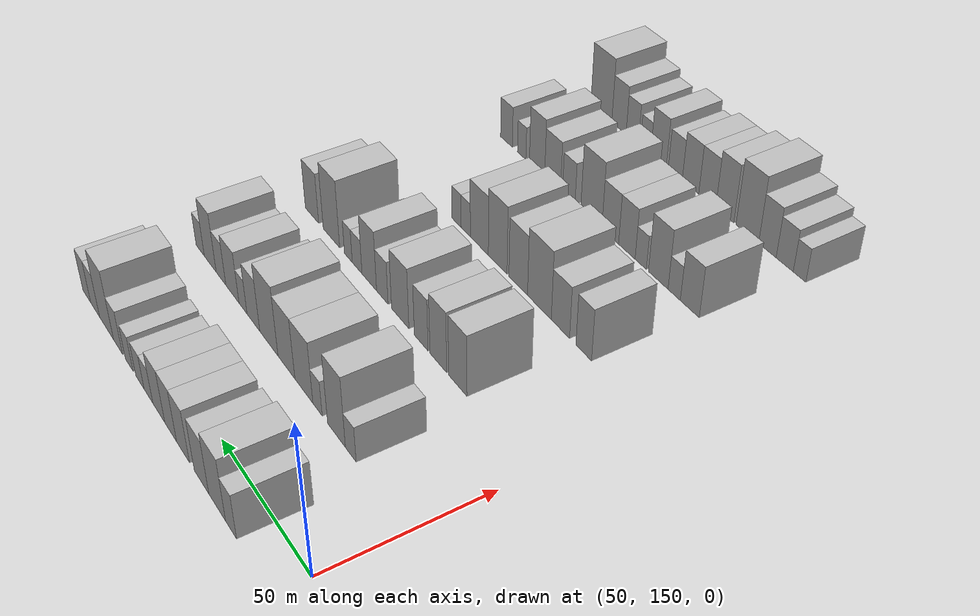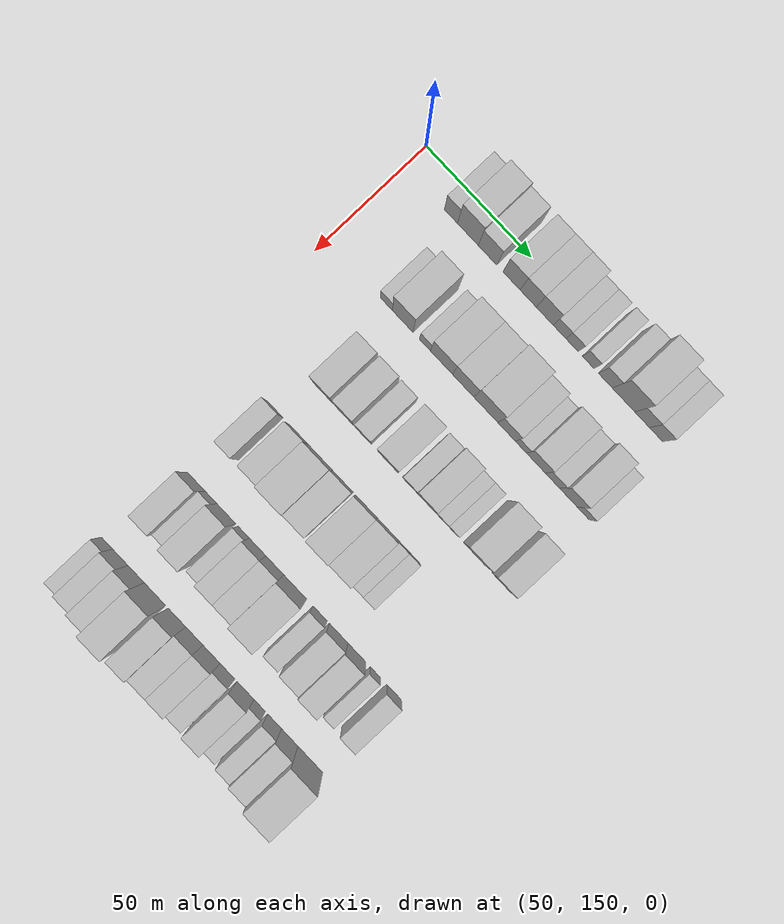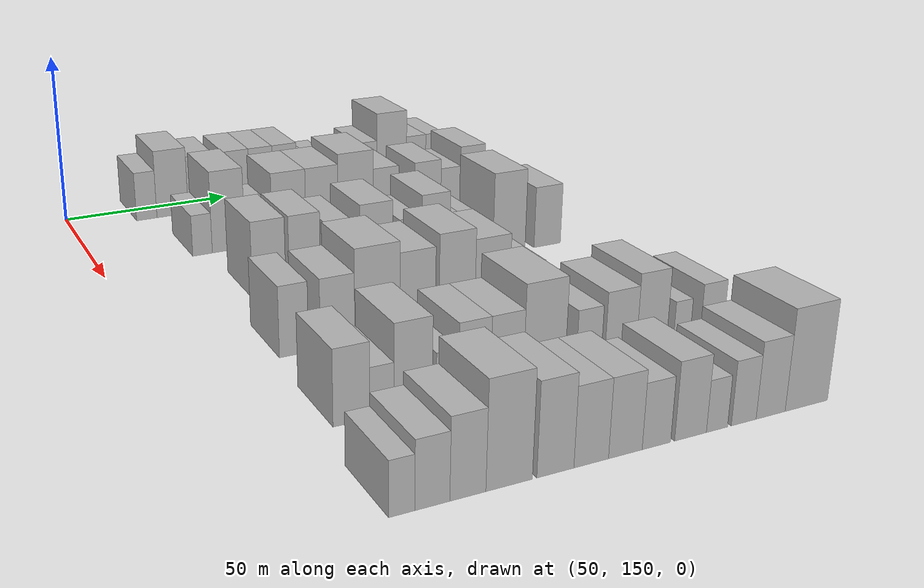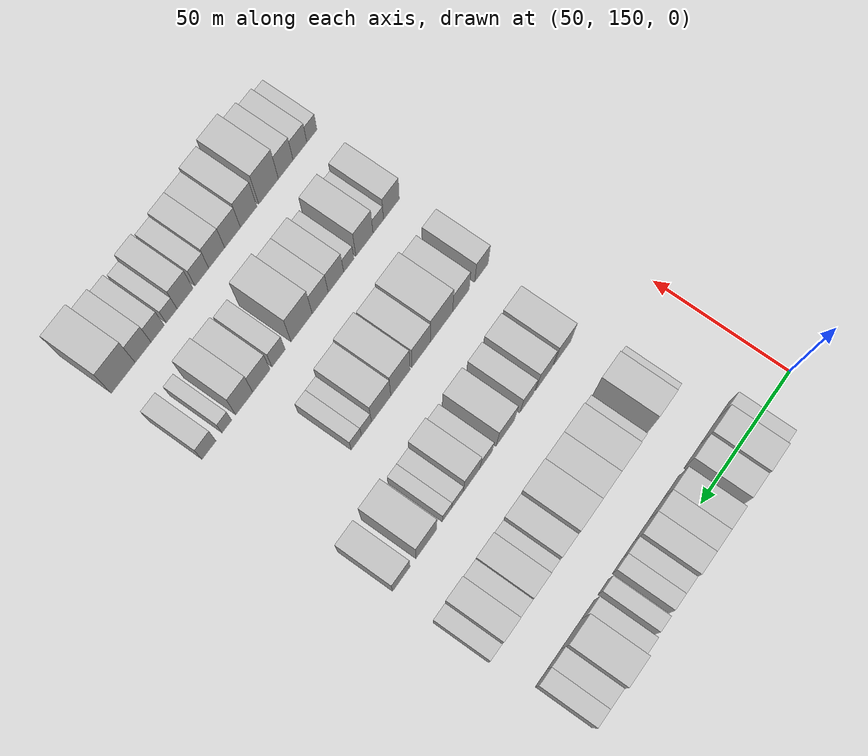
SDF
<sdf version="1.6">
 <world name="default">
  <model name="building_72">
   <static>1</static>
   <pose>50.0000 172.2063 0 0.000000 0.000000 0.000000</pose>
   <link name="link">
    <pose>0 0 7.50 0 0 0</pose>
    <collision name="collision"><geometry><box><size>20.0000 6.2853 15.0000</size></box></geometry></collision>
    <visual name="visual">
     <cast_shadows>0</cast_shadows>
     <geometry><box><size>20.0000 6.2853 15.0000</size></box></geometry>
     <material>
      <script>
       <uri>model://HANNAS_wall/materials/scripts</uri>
       <uri>model://HANNAS_wall/materials/textures</uri>
       <name>vrc/HANNAS_wall</name>
      </script>
     </material>
    </visual>
   </link>
  </model>
  <model name="building_73">
   <static>1</static>
   <pose>50.0000 180.2846 0 0.000000 0.000000 0.000000</pose>
   <link name="link">
    <pose>0 0 10.50 0 0 0</pose>
    <collision name="collision"><geometry><box><size>20.0000 9.8712 21.0000</size></box></geometry></collision>
    <visual name="visual">
     <cast_shadows>0</cast_shadows>
     <geometry><box><size>20.0000 9.8712 21.0000</size></box></geometry>
     <material>
      <script>
       <uri>model://HANNAS_wall/materials/scripts</uri>
       <uri>model://HANNAS_wall/materials/textures</uri>
       <name>vrc/HANNAS_wall</name>
      </script>
     </material>
    </visual>
   </link>
  </model>
  <model name="building_74">
   <static>1</static>
   <pose>50.0000 189.6203 0 0.000000 0.000000 0.000000</pose>
   <link name="link">
    <pose>0 0 9.00 0 0 0</pose>
    <collision name="collision"><geometry><box><size>20.0000 8.8002 18.0000</size></box></geometry></collision>
    <visual name="visual">
     <cast_shadows>0</cast_shadows>
     <geometry><box><size>20.0000 8.8002 18.0000</size></box></geometry>
     <material>
      <script>
       <uri>model://HANNAS_wall/materials/scripts</uri>
       <uri>model://HANNAS_wall/materials/textures</uri>
       <name>vrc/HANNAS_wall</name>
      </script>
     </material>
    </visual>
   </link>
  </model>
  <model name="building_75">
   <static>1</static>
   <pose>50.0000 201.1195 0 0.000000 0.000000 0.000000</pose>
   <link name="link">
    <pose>0 0 9.00 0 0 0</pose>
    <collision name="collision"><geometry><box><size>20.0000 8.1983 18.0000</size></box></geometry></collision>
    <visual name="visual">
     <cast_shadows>0</cast_shadows>
     <geometry><box><size>20.0000 8.1983 18.0000</size></box></geometry>
     <material>
      <script>
       <uri>model://HANNAS_wall/materials/scripts</uri>
       <uri>model://HANNAS_wall/materials/textures</uri>
       <name>vrc/HANNAS_wall</name>
      </script>
     </material>
    </visual>
   </link>
  </model>
  <model name="building_76">
   <static>1</static>
   <pose>50.0000 209.0803 0 0.000000 0.000000 0.000000</pose>
   <link name="link">
    <pose>0 0 9.00 0 0 0</pose>
    <collision name="collision"><geometry><box><size>20.0000 7.7233 18.0000</size></box></geometry></collision>
    <visual name="visual">
     <cast_shadows>0</cast_shadows>
     <geometry><box><size>20.0000 7.7233 18.0000</size></box></geometry>
     <material>
      <script>
       <uri>model://HANNAS_wall/materials/scripts</uri>
       <uri>model://HANNAS_wall/materials/textures</uri>
       <name>vrc/HANNAS_wall</name>
      </script>
     </material>
    </visual>
   </link>
  </model>
  <model name="building_77">
   <static>1</static>
   <pose>50.0000 216.9637 0 0.000000 0.000000 0.000000</pose>
   <link name="link">
    <pose>0 0 9.00 0 0 0</pose>
    <collision name="collision"><geometry><box><size>20.0000 8.0435 18.0000</size></box></geometry></collision>
    <visual name="visual">
     <cast_shadows>0</cast_shadows>
     <geometry><box><size>20.0000 8.0435 18.0000</size></box></geometry>
     <material>
      <script>
       <uri>model://HANNAS_wall/materials/scripts</uri>
       <uri>model://HANNAS_wall/materials/textures</uri>
       <name>vrc/HANNAS_wall</name>
      </script>
     </material>
    </visual>
   </link>
  </model>
  <model name="building_78">
   <static>1</static>
   <pose>50.0000 223.9829 0 0.000000 0.000000 0.000000</pose>
   <link name="link">
    <pose>0 0 6.00 0 0 0</pose>
    <collision name="collision"><geometry><box><size>20.0000 5.9948 12.0000</size></box></geometry></collision>
    <visual name="visual">
     <cast_shadows>0</cast_shadows>
     <geometry><box><size>20.0000 5.9948 12.0000</size></box></geometry>
     <material>
      <script>
       <uri>model://HANNAS_wall/materials/scripts</uri>
       <uri>model://HANNAS_wall/materials/textures</uri>
       <name>vrc/HANNAS_wall</name>
      </script>
     </material>
    </visual>
   </link>
  </model>
  <model name="building_79">
   <static>1</static>
   <pose>50.0000 229.9279 0 0.000000 0.000000 0.000000</pose>
   <link name="link">
    <pose>0 0 6.00 0 0 0</pose>
    <collision name="collision"><geometry><box><size>20.0000 5.8952 12.0000</size></box></geometry></collision>
    <visual name="visual">
     <cast_shadows>0</cast_shadows>
     <geometry><box><size>20.0000 5.8952 12.0000</size></box></geometry>
     <material>
      <script>
       <uri>model://HANNAS_wall/materials/scripts</uri>
       <uri>model://HANNAS_wall/materials/textures</uri>
       <name>vrc/HANNAS_wall</name>
      </script>
     </material>
    </visual>
   </link>
  </model>
  <model name="building_80">
   <static>1</static>
   <pose>50.0000 237.6682 0 0.000000 0.000000 0.000000</pose>
   <link name="link">
    <pose>0 0 6.00 0 0 0</pose>
    <collision name="collision"><geometry><box><size>20.0000 5.5854 12.0000</size></box></geometry></collision>
    <visual name="visual">
     <cast_shadows>0</cast_shadows>
     <geometry><box><size>20.0000 5.5854 12.0000</size></box></geometry>
     <material>
      <script>
       <uri>model://HANNAS_wall/materials/scripts</uri>
       <uri>model://HANNAS_wall/materials/textures</uri>
       <name>vrc/HANNAS_wall</name>
      </script>
     </material>
    </visual>
   </link>
  </model>
  <model name="building_81">
   <static>1</static>
   <pose>50.0000 245.8114 0 0.000000 0.000000 0.000000</pose>
   <link name="link">
    <pose>0 0 7.50 0 0 0</pose>
    <collision name="collision"><geometry><box><size>20.0000 6.7012 15.0000</size></box></geometry></collision>
    <visual name="visual">
     <cast_shadows>0</cast_shadows>
     <geometry><box><size>20.0000 6.7012 15.0000</size></box></geometry>
     <material>
      <script>
       <uri>model://HANNAS_wall/materials/scripts</uri>
       <uri>model://HANNAS_wall/materials/textures</uri>
       <name>vrc/HANNAS_wall</name>
      </script>
     </material>
    </visual>
   </link>
  </model>
  <model name="building_82">
   <static>1</static>
   <pose>50.0000 254.4853 0 0.000000 0.000000 0.000000</pose>
   <link name="link">
    <pose>0 0 12.00 0 0 0</pose>
    <collision name="collision"><geometry><box><size>20.0000 10.6465 24.0000</size></box></geometry></collision>
    <visual name="visual">
     <cast_shadows>0</cast_shadows>
     <geometry><box><size>20.0000 10.6465 24.0000</size></box></geometry>
     <material>
      <script>
       <uri>model://HANNAS_wall/materials/scripts</uri>
       <uri>model://HANNAS_wall/materials/textures</uri>
       <name>vrc/HANNAS_wall</name>
      </script>
     </material>
    </visual>
   </link>
  </model>
  <model name="building_83">
   <static>1</static>
   <pose>50.0000 263.3288 0 0.000000 0.000000 0.000000</pose>
   <link name="link">
    <pose>0 0 7.50 0 0 0</pose>
    <collision name="collision"><geometry><box><size>20.0000 7.0406 15.0000</size></box></geometry></collision>
    <visual name="visual">
     <cast_shadows>0</cast_shadows>
     <geometry><box><size>20.0000 7.0406 15.0000</size></box></geometry>
     <material>
      <script>
       <uri>model://HANNAS_wall/materials/scripts</uri>
       <uri>model://HANNAS_wall/materials/textures</uri>
       <name>vrc/HANNAS_wall</name>
      </script>
     </material>
    </visual>
   </link>
  </model>
  <model name="building_84">
   <static>1</static>
   <pose>50.0000 270.0335 0 0.000000 0.000000 0.000000</pose>
   <link name="link">
    <pose>0 0 7.50 0 0 0</pose>
    <collision name="collision"><geometry><box><size>20.0000 6.3689 15.0000</size></box></geometry></collision>
    <visual name="visual">
     <cast_shadows>0</cast_shadows>
     <geometry><box><size>20.0000 6.3689 15.0000</size></box></geometry>
     <material>
      <script>
       <uri>model://HANNAS_wall/materials/scripts</uri>
       <uri>model://HANNAS_wall/materials/textures</uri>
       <name>vrc/HANNAS_wall</name>
      </script>
     </material>
    </visual>
   </link>
  </model>
  <model name="building_198">
   <static>1</static>
   <pose>85.0000 178.7618 0 0.000000 0.000000 0.000000</pose>
   <link name="link">
    <pose>0 0 6.00 0 0 0</pose>
    <collision name="collision"><geometry><box><size>20.0000 5.7120 12.0000</size></box></geometry></collision>
    <visual name="visual">
     <cast_shadows>0</cast_shadows>
     <geometry><box><size>20.0000 5.7120 12.0000</size></box></geometry>
     <material>
      <script>
       <uri>model://HANNAS_wall/materials/scripts</uri>
       <uri>model://HANNAS_wall/materials/textures</uri>
       <name>vrc/HANNAS_wall</name>
      </script>
     </material>
    </visual>
   </link>
  </model>
  <model name="building_199">
   <static>1</static>
   <pose>85.0000 186.4769 0 0.000000 0.000000 0.000000</pose>
   <link name="link">
    <pose>0 0 12.00 0 0 0</pose>
    <collision name="collision"><geometry><box><size>20.0000 9.7182 24.0000</size></box></geometry></collision>
    <visual name="visual">
     <cast_shadows>0</cast_shadows>
     <geometry><box><size>20.0000 9.7182 24.0000</size></box></geometry>
     <material>
      <script>
       <uri>model://HANNAS_wall/materials/scripts</uri>
       <uri>model://HANNAS_wall/materials/textures</uri>
       <name>vrc/HANNAS_wall</name>
      </script>
     </material>
    </visual>
   </link>
  </model>
  <model name="building_200">
   <static>1</static>
   <pose>85.0000 196.9893 0 0.000000 0.000000 0.000000</pose>
   <link name="link">
    <pose>0 0 6.00 0 0 0</pose>
    <collision name="collision"><geometry><box><size>20.0000 5.3066 12.0000</size></box></geometry></collision>
    <visual name="visual">
     <cast_shadows>0</cast_shadows>
     <geometry><box><size>20.0000 5.3066 12.0000</size></box></geometry>
     <material>
      <script>
       <uri>model://HANNAS_wall/materials/scripts</uri>
       <uri>model://HANNAS_wall/materials/textures</uri>
       <name>vrc/HANNAS_wall</name>
      </script>
     </material>
    </visual>
   </link>
  </model>
  <model name="building_201">
   <static>1</static>
   <pose>85.0000 204.8769 0 0.000000 0.000000 0.000000</pose>
   <link name="link">
    <pose>0 0 10.50 0 0 0</pose>
    <collision name="collision"><geometry><box><size>20.0000 10.4686 21.0000</size></box></geometry></collision>
    <visual name="visual">
     <cast_shadows>0</cast_shadows>
     <geometry><box><size>20.0000 10.4686 21.0000</size></box></geometry>
     <material>
      <script>
       <uri>model://HANNAS_wall/materials/scripts</uri>
       <uri>model://HANNAS_wall/materials/textures</uri>
       <name>vrc/HANNAS_wall</name>
      </script>
     </material>
    </visual>
   </link>
  </model>
  <model name="building_202">
   <static>1</static>
   <pose>85.0000 215.2196 0 0.000000 0.000000 0.000000</pose>
   <link name="link">
    <pose>0 0 10.50 0 0 0</pose>
    <collision name="collision"><geometry><box><size>20.0000 10.2167 21.0000</size></box></geometry></collision>
    <visual name="visual">
     <cast_shadows>0</cast_shadows>
     <geometry><box><size>20.0000 10.2167 21.0000</size></box></geometry>
     <material>
      <script>
       <uri>model://HANNAS_wall/materials/scripts</uri>
       <uri>model://HANNAS_wall/materials/textures</uri>
       <name>vrc/HANNAS_wall</name>
      </script>
     </material>
    </visual>
   </link>
  </model>
  <model name="building_203">
   <static>1</static>
   <pose>85.0000 226.0204 0 0.000000 0.000000 0.000000</pose>
   <link name="link">
    <pose>0 0 12.00 0 0 0</pose>
    <collision name="collision"><geometry><box><size>20.0000 11.3850 24.0000</size></box></geometry></collision>
    <visual name="visual">
     <cast_shadows>0</cast_shadows>
     <geometry><box><size>20.0000 11.3850 24.0000</size></box></geometry>
     <material>
      <script>
       <uri>model://HANNAS_wall/materials/scripts</uri>
       <uri>model://HANNAS_wall/materials/textures</uri>
       <name>vrc/HANNAS_wall</name>
      </script>
     </material>
    </visual>
   </link>
  </model>
  <model name="building_204">
   <static>1</static>
   <pose>85.0000 235.8639 0 0.000000 0.000000 0.000000</pose>
   <link name="link">
    <pose>0 0 9.00 0 0 0</pose>
    <collision name="collision"><geometry><box><size>20.0000 8.3018 18.0000</size></box></geometry></collision>
    <visual name="visual">
     <cast_shadows>0</cast_shadows>
     <geometry><box><size>20.0000 8.3018 18.0000</size></box></geometry>
     <material>
      <script>
       <uri>model://HANNAS_wall/materials/scripts</uri>
       <uri>model://HANNAS_wall/materials/textures</uri>
       <name>vrc/HANNAS_wall</name>
      </script>
     </material>
    </visual>
   </link>
  </model>
  <model name="building_205">
   <static>1</static>
   <pose>85.0000 242.6818 0 0.000000 0.000000 0.000000</pose>
   <link name="link">
    <pose>0 0 6.00 0 0 0</pose>
    <collision name="collision"><geometry><box><size>20.0000 5.3340 12.0000</size></box></geometry></collision>
    <visual name="visual">
     <cast_shadows>0</cast_shadows>
     <geometry><box><size>20.0000 5.3340 12.0000</size></box></geometry>
     <material>
      <script>
       <uri>model://HANNAS_wall/materials/scripts</uri>
       <uri>model://HANNAS_wall/materials/textures</uri>
       <name>vrc/HANNAS_wall</name>
      </script>
     </material>
    </visual>
   </link>
  </model>
  <model name="building_206">
   <static>1</static>
   <pose>85.0000 249.8046 0 0.000000 0.000000 0.000000</pose>
   <link name="link">
    <pose>0 0 9.00 0 0 0</pose>
    <collision name="collision"><geometry><box><size>20.0000 8.9117 18.0000</size></box></geometry></collision>
    <visual name="visual">
     <cast_shadows>0</cast_shadows>
     <geometry><box><size>20.0000 8.9117 18.0000</size></box></geometry>
     <material>
      <script>
       <uri>model://HANNAS_wall/materials/scripts</uri>
       <uri>model://HANNAS_wall/materials/textures</uri>
       <name>vrc/HANNAS_wall</name>
      </script>
     </material>
    </visual>
   </link>
  </model>
  <model name="building_207">
   <static>1</static>
   <pose>85.0000 257.6272 0 0.000000 0.000000 0.000000</pose>
   <link name="link">
    <pose>0 0 7.50 0 0 0</pose>
    <collision name="collision"><geometry><box><size>20.0000 6.7334 15.0000</size></box></geometry></collision>
    <visual name="visual">
     <cast_shadows>0</cast_shadows>
     <geometry><box><size>20.0000 6.7334 15.0000</size></box></geometry>
     <material>
      <script>
       <uri>model://HANNAS_wall/materials/scripts</uri>
       <uri>model://HANNAS_wall/materials/textures</uri>
       <name>vrc/HANNAS_wall</name>
      </script>
     </material>
    </visual>
   </link>
  </model>
  <model name="building_208">
   <static>1</static>
   <pose>85.0000 265.2273 0 0.000000 0.000000 0.000000</pose>
   <link name="link">
    <pose>0 0 10.50 0 0 0</pose>
    <collision name="collision"><geometry><box><size>20.0000 8.4666 21.0000</size></box></geometry></collision>
    <visual name="visual">
     <cast_shadows>0</cast_shadows>
     <geometry><box><size>20.0000 8.4666 21.0000</size></box></geometry>
     <material>
      <script>
       <uri>model://HANNAS_wall/materials/scripts</uri>
       <uri>model://HANNAS_wall/materials/textures</uri>
       <name>vrc/HANNAS_wall</name>
      </script>
     </material>
    </visual>
   </link>
  </model>
  <model name="building_209">
   <static>1</static>
   <pose>85.0000 272.4271 0 0.000000 0.000000 0.000000</pose>
   <link name="link">
    <pose>0 0 6.00 0 0 0</pose>
    <collision name="collision"><geometry><box><size>20.0000 5.9330 12.0000</size></box></geometry></collision>
    <visual name="visual">
     <cast_shadows>0</cast_shadows>
     <geometry><box><size>20.0000 5.9330 12.0000</size></box></geometry>
     <material>
      <script>
       <uri>model://HANNAS_wall/materials/scripts</uri>
       <uri>model://HANNAS_wall/materials/textures</uri>
       <name>vrc/HANNAS_wall</name>
      </script>
     </material>
    </visual>
   </link>
  </model>
  <model name="building_319">
   <static>1</static>
   <pose>120.0000 185.8170 0 0.000000 0.000000 0.000000</pose>
   <link name="link">
    <pose>0 0 10.50 0 0 0</pose>
    <collision name="collision"><geometry><box><size>20.0000 9.2385 21.0000</size></box></geometry></collision>
    <visual name="visual">
     <cast_shadows>0</cast_shadows>
     <geometry><box><size>20.0000 9.2385 21.0000</size></box></geometry>
     <material>
      <script>
       <uri>model://HANNAS_wall/materials/scripts</uri>
       <uri>model://HANNAS_wall/materials/textures</uri>
       <name>vrc/HANNAS_wall</name>
      </script>
     </material>
    </visual>
   </link>
  </model>
  <model name="building_320">
   <static>1</static>
   <pose>120.0000 195.8365 0 0.000000 0.000000 0.000000</pose>
   <link name="link">
    <pose>0 0 10.50 0 0 0</pose>
    <collision name="collision"><geometry><box><size>20.0000 8.8005 21.0000</size></box></geometry></collision>
    <visual name="visual">
     <cast_shadows>0</cast_shadows>
     <geometry><box><size>20.0000 8.8005 21.0000</size></box></geometry>
     <material>
      <script>
       <uri>model://HANNAS_wall/materials/scripts</uri>
       <uri>model://HANNAS_wall/materials/textures</uri>
       <name>vrc/HANNAS_wall</name>
      </script>
     </material>
    </visual>
   </link>
  </model>
  <model name="building_321">
   <static>1</static>
   <pose>120.0000 204.9454 0 0.000000 0.000000 0.000000</pose>
   <link name="link">
    <pose>0 0 9.00 0 0 0</pose>
    <collision name="collision"><geometry><box><size>20.0000 7.4174 18.0000</size></box></geometry></collision>
    <visual name="visual">
     <cast_shadows>0</cast_shadows>
     <geometry><box><size>20.0000 7.4174 18.0000</size></box></geometry>
     <material>
      <script>
       <uri>model://HANNAS_wall/materials/scripts</uri>
       <uri>model://HANNAS_wall/materials/textures</uri>
       <name>vrc/HANNAS_wall</name>
      </script>
     </material>
    </visual>
   </link>
  </model>
  <model name="building_322">
   <static>1</static>
   <pose>120.0000 216.5211 0 0.000000 0.000000 0.000000</pose>
   <link name="link">
    <pose>0 0 10.50 0 0 0</pose>
    <collision name="collision"><geometry><box><size>20.0000 9.7340 21.0000</size></box></geometry></collision>
    <visual name="visual">
     <cast_shadows>0</cast_shadows>
     <geometry><box><size>20.0000 9.7340 21.0000</size></box></geometry>
     <material>
      <script>
       <uri>model://HANNAS_wall/materials/scripts</uri>
       <uri>model://HANNAS_wall/materials/textures</uri>
       <name>vrc/HANNAS_wall</name>
      </script>
     </material>
    </visual>
   </link>
  </model>
  <model name="building_323">
   <static>1</static>
   <pose>120.0000 226.7242 0 0.000000 0.000000 0.000000</pose>
   <link name="link">
    <pose>0 0 7.50 0 0 0</pose>
    <collision name="collision"><geometry><box><size>20.0000 6.6721 15.0000</size></box></geometry></collision>
    <visual name="visual">
     <cast_shadows>0</cast_shadows>
     <geometry><box><size>20.0000 6.6721 15.0000</size></box></geometry>
     <material>
      <script>
       <uri>model://HANNAS_wall/materials/scripts</uri>
       <uri>model://HANNAS_wall/materials/textures</uri>
       <name>vrc/HANNAS_wall</name>
      </script>
     </material>
    </visual>
   </link>
  </model>
  <model name="building_324">
   <static>1</static>
   <pose>120.0000 234.4064 0 0.000000 0.000000 0.000000</pose>
   <link name="link">
    <pose>0 0 10.50 0 0 0</pose>
    <collision name="collision"><geometry><box><size>20.0000 8.6924 21.0000</size></box></geometry></collision>
    <visual name="visual">
     <cast_shadows>0</cast_shadows>
     <geometry><box><size>20.0000 8.6924 21.0000</size></box></geometry>
     <material>
      <script>
       <uri>model://HANNAS_wall/materials/scripts</uri>
       <uri>model://HANNAS_wall/materials/textures</uri>
       <name>vrc/HANNAS_wall</name>
      </script>
     </material>
    </visual>
   </link>
  </model>
  <model name="building_325">
   <static>1</static>
   <pose>120.0000 241.7176 0 0.000000 0.000000 0.000000</pose>
   <link name="link">
    <pose>0 0 6.00 0 0 0</pose>
    <collision name="collision"><geometry><box><size>20.0000 5.9299 12.0000</size></box></geometry></collision>
    <visual name="visual">
     <cast_shadows>0</cast_shadows>
     <geometry><box><size>20.0000 5.9299 12.0000</size></box></geometry>
     <material>
      <script>
       <uri>model://HANNAS_wall/materials/scripts</uri>
       <uri>model://HANNAS_wall/materials/textures</uri>
       <name>vrc/HANNAS_wall</name>
      </script>
     </material>
    </visual>
   </link>
  </model>
  <model name="building_326">
   <static>1</static>
   <pose>120.0000 247.0932 0 0.000000 0.000000 0.000000</pose>
   <link name="link">
    <pose>0 0 6.00 0 0 0</pose>
    <collision name="collision"><geometry><box><size>20.0000 4.8214 12.0000</size></box></geometry></collision>
    <visual name="visual">
     <cast_shadows>0</cast_shadows>
     <geometry><box><size>20.0000 4.8214 12.0000</size></box></geometry>
     <material>
      <script>
       <uri>model://HANNAS_wall/materials/scripts</uri>
       <uri>model://HANNAS_wall/materials/textures</uri>
       <name>vrc/HANNAS_wall</name>
      </script>
     </material>
    </visual>
   </link>
  </model>
  <model name="building_327">
   <static>1</static>
   <pose>120.0000 257.7664 0 0.000000 0.000000 0.000000</pose>
   <link name="link">
    <pose>0 0 12.00 0 0 0</pose>
    <collision name="collision"><geometry><box><size>20.0000 10.5250 24.0000</size></box></geometry></collision>
    <visual name="visual">
     <cast_shadows>0</cast_shadows>
     <geometry><box><size>20.0000 10.5250 24.0000</size></box></geometry>
     <material>
      <script>
       <uri>model://HANNAS_wall/materials/scripts</uri>
       <uri>model://HANNAS_wall/materials/textures</uri>
       <name>vrc/HANNAS_wall</name>
      </script>
     </material>
    </visual>
   </link>
  </model>
  <model name="building_328">
   <static>1</static>
   <pose>120.0000 270.4519 0 0.000000 0.000000 0.000000</pose>
   <link name="link">
    <pose>0 0 9.00 0 0 0</pose>
    <collision name="collision"><geometry><box><size>20.0000 8.8460 18.0000</size></box></geometry></collision>
    <visual name="visual">
     <cast_shadows>0</cast_shadows>
     <geometry><box><size>20.0000 8.8460 18.0000</size></box></geometry>
     <material>
      <script>
       <uri>model://HANNAS_wall/materials/scripts</uri>
       <uri>model://HANNAS_wall/materials/textures</uri>
       <name>vrc/HANNAS_wall</name>
      </script>
     </material>
    </visual>
   </link>
  </model>
  <model name="building_446">
   <static>1</static>
   <pose>155.0000 179.0129 0 0.000000 0.000000 0.000000</pose>
   <link name="link">
    <pose>0 0 9.00 0 0 0</pose>
    <collision name="collision"><geometry><box><size>20.0000 7.3074 18.0000</size></box></geometry></collision>
    <visual name="visual">
     <cast_shadows>0</cast_shadows>
     <geometry><box><size>20.0000 7.3074 18.0000</size></box></geometry>
     <material>
      <script>
       <uri>model://HANNAS_wall/materials/scripts</uri>
       <uri>model://HANNAS_wall/materials/textures</uri>
       <name>vrc/HANNAS_wall</name>
      </script>
     </material>
    </visual>
   </link>
  </model>
  <model name="building_447">
   <static>1</static>
   <pose>155.0000 190.1077 0 0.000000 0.000000 0.000000</pose>
   <link name="link">
    <pose>0 0 9.00 0 0 0</pose>
    <collision name="collision"><geometry><box><size>20.0000 8.8821 18.0000</size></box></geometry></collision>
    <visual name="visual">
     <cast_shadows>0</cast_shadows>
     <geometry><box><size>20.0000 8.8821 18.0000</size></box></geometry>
     <material>
      <script>
       <uri>model://HANNAS_wall/materials/scripts</uri>
       <uri>model://HANNAS_wall/materials/textures</uri>
       <name>vrc/HANNAS_wall</name>
      </script>
     </material>
    </visual>
   </link>
  </model>
  <model name="building_448">
   <static>1</static>
   <pose>155.0000 200.5091 0 0.000000 0.000000 0.000000</pose>
   <link name="link">
    <pose>0 0 12.00 0 0 0</pose>
    <collision name="collision"><geometry><box><size>20.0000 11.9207 24.0000</size></box></geometry></collision>
    <visual name="visual">
     <cast_shadows>0</cast_shadows>
     <geometry><box><size>20.0000 11.9207 24.0000</size></box></geometry>
     <material>
      <script>
       <uri>model://HANNAS_wall/materials/scripts</uri>
       <uri>model://HANNAS_wall/materials/textures</uri>
       <name>vrc/HANNAS_wall</name>
      </script>
     </material>
    </visual>
   </link>
  </model>
  <model name="building_449">
   <static>1</static>
   <pose>155.0000 211.3042 0 0.000000 0.000000 0.000000</pose>
   <link name="link">
    <pose>0 0 10.50 0 0 0</pose>
    <collision name="collision"><geometry><box><size>20.0000 9.6696 21.0000</size></box></geometry></collision>
    <visual name="visual">
     <cast_shadows>0</cast_shadows>
     <geometry><box><size>20.0000 9.6696 21.0000</size></box></geometry>
     <material>
      <script>
       <uri>model://HANNAS_wall/materials/scripts</uri>
       <uri>model://HANNAS_wall/materials/textures</uri>
       <name>vrc/HANNAS_wall</name>
      </script>
     </material>
    </visual>
   </link>
  </model>
  <model name="building_450">
   <static>1</static>
   <pose>155.0000 222.1676 0 0.000000 0.000000 0.000000</pose>
   <link name="link">
    <pose>0 0 12.00 0 0 0</pose>
    <collision name="collision"><geometry><box><size>20.0000 10.0573 24.0000</size></box></geometry></collision>
    <visual name="visual">
     <cast_shadows>0</cast_shadows>
     <geometry><box><size>20.0000 10.0573 24.0000</size></box></geometry>
     <material>
      <script>
       <uri>model://HANNAS_wall/materials/scripts</uri>
       <uri>model://HANNAS_wall/materials/textures</uri>
       <name>vrc/HANNAS_wall</name>
      </script>
     </material>
    </visual>
   </link>
  </model>
  <model name="building_451">
   <static>1</static>
   <pose>155.0000 232.1949 0 0.000000 0.000000 0.000000</pose>
   <link name="link">
    <pose>0 0 10.50 0 0 0</pose>
    <collision name="collision"><geometry><box><size>20.0000 9.9973 21.0000</size></box></geometry></collision>
    <visual name="visual">
     <cast_shadows>0</cast_shadows>
     <geometry><box><size>20.0000 9.9973 21.0000</size></box></geometry>
     <material>
      <script>
       <uri>model://HANNAS_wall/materials/scripts</uri>
       <uri>model://HANNAS_wall/materials/textures</uri>
       <name>vrc/HANNAS_wall</name>
      </script>
     </material>
    </visual>
   </link>
  </model>
  <model name="building_452">
   <static>1</static>
   <pose>155.0000 239.7919 0 0.000000 0.000000 0.000000</pose>
   <link name="link">
    <pose>0 0 6.00 0 0 0</pose>
    <collision name="collision"><geometry><box><size>20.0000 5.1967 12.0000</size></box></geometry></collision>
    <visual name="visual">
     <cast_shadows>0</cast_shadows>
     <geometry><box><size>20.0000 5.1967 12.0000</size></box></geometry>
     <material>
      <script>
       <uri>model://HANNAS_wall/materials/scripts</uri>
       <uri>model://HANNAS_wall/materials/textures</uri>
       <name>vrc/HANNAS_wall</name>
      </script>
     </material>
    </visual>
   </link>
  </model>
  <model name="building_453">
   <static>1</static>
   <pose>155.0000 245.0249 0 0.000000 0.000000 0.000000</pose>
   <link name="link">
    <pose>0 0 6.00 0 0 0</pose>
    <collision name="collision"><geometry><box><size>20.0000 5.2692 12.0000</size></box></geometry></collision>
    <visual name="visual">
     <cast_shadows>0</cast_shadows>
     <geometry><box><size>20.0000 5.2692 12.0000</size></box></geometry>
     <material>
      <script>
       <uri>model://HANNAS_wall/materials/scripts</uri>
       <uri>model://HANNAS_wall/materials/textures</uri>
       <name>vrc/HANNAS_wall</name>
      </script>
     </material>
    </visual>
   </link>
  </model>
  <model name="building_568">
   <static>1</static>
   <pose>190.0000 178.2689 0 0.000000 0.000000 0.000000</pose>
   <link name="link">
    <pose>0 0 9.00 0 0 0</pose>
    <collision name="collision"><geometry><box><size>20.0000 8.4548 18.0000</size></box></geometry></collision>
    <visual name="visual">
     <cast_shadows>0</cast_shadows>
     <geometry><box><size>20.0000 8.4548 18.0000</size></box></geometry>
     <material>
      <script>
       <uri>model://HANNAS_wall/materials/scripts</uri>
       <uri>model://HANNAS_wall/materials/textures</uri>
       <name>vrc/HANNAS_wall</name>
      </script>
     </material>
    </visual>
   </link>
  </model>
  <model name="building_569">
   <static>1</static>
   <pose>190.0000 185.3020 0 0.000000 0.000000 0.000000</pose>
   <link name="link">
    <pose>0 0 6.00 0 0 0</pose>
    <collision name="collision"><geometry><box><size>20.0000 5.6113 12.0000</size></box></geometry></collision>
    <visual name="visual">
     <cast_shadows>0</cast_shadows>
     <geometry><box><size>20.0000 5.6113 12.0000</size></box></geometry>
     <material>
      <script>
       <uri>model://HANNAS_wall/materials/scripts</uri>
       <uri>model://HANNAS_wall/materials/textures</uri>
       <name>vrc/HANNAS_wall</name>
      </script>
     </material>
    </visual>
   </link>
  </model>
  <model name="building_570">
   <static>1</static>
   <pose>190.0000 192.6797 0 0.000000 0.000000 0.000000</pose>
   <link name="link">
    <pose>0 0 10.50 0 0 0</pose>
    <collision name="collision"><geometry><box><size>20.0000 9.1441 21.0000</size></box></geometry></collision>
    <visual name="visual">
     <cast_shadows>0</cast_shadows>
     <geometry><box><size>20.0000 9.1441 21.0000</size></box></geometry>
     <material>
      <script>
       <uri>model://HANNAS_wall/materials/scripts</uri>
       <uri>model://HANNAS_wall/materials/textures</uri>
       <name>vrc/HANNAS_wall</name>
      </script>
     </material>
    </visual>
   </link>
  </model>
  <model name="building_571">
   <static>1</static>
   <pose>190.0000 200.9474 0 0.000000 0.000000 0.000000</pose>
   <link name="link">
    <pose>0 0 6.00 0 0 0</pose>
    <collision name="collision"><geometry><box><size>20.0000 5.3915 12.0000</size></box></geometry></collision>
    <visual name="visual">
     <cast_shadows>0</cast_shadows>
     <geometry><box><size>20.0000 5.3915 12.0000</size></box></geometry>
     <material>
      <script>
       <uri>model://HANNAS_wall/materials/scripts</uri>
       <uri>model://HANNAS_wall/materials/textures</uri>
       <name>vrc/HANNAS_wall</name>
      </script>
     </material>
    </visual>
   </link>
  </model>
  <model name="building_572">
   <static>1</static>
   <pose>190.0000 207.6912 0 0.000000 0.000000 0.000000</pose>
   <link name="link">
    <pose>0 0 9.00 0 0 0</pose>
    <collision name="collision"><geometry><box><size>20.0000 8.0960 18.0000</size></box></geometry></collision>
    <visual name="visual">
     <cast_shadows>0</cast_shadows>
     <geometry><box><size>20.0000 8.0960 18.0000</size></box></geometry>
     <material>
      <script>
       <uri>model://HANNAS_wall/materials/scripts</uri>
       <uri>model://HANNAS_wall/materials/textures</uri>
       <name>vrc/HANNAS_wall</name>
      </script>
     </material>
    </visual>
   </link>
  </model>
  <model name="building_573">
   <static>1</static>
   <pose>190.0000 215.9385 0 0.000000 0.000000 0.000000</pose>
   <link name="link">
    <pose>0 0 9.00 0 0 0</pose>
    <collision name="collision"><geometry><box><size>20.0000 8.3987 18.0000</size></box></geometry></collision>
    <visual name="visual">
     <cast_shadows>0</cast_shadows>
     <geometry><box><size>20.0000 8.3987 18.0000</size></box></geometry>
     <material>
      <script>
       <uri>model://HANNAS_wall/materials/scripts</uri>
       <uri>model://HANNAS_wall/materials/textures</uri>
       <name>vrc/HANNAS_wall</name>
      </script>
     </material>
    </visual>
   </link>
  </model>
  <model name="building_574">
   <static>1</static>
   <pose>190.0000 225.6128 0 0.000000 0.000000 0.000000</pose>
   <link name="link">
    <pose>0 0 12.00 0 0 0</pose>
    <collision name="collision"><geometry><box><size>20.0000 10.9500 24.0000</size></box></geometry></collision>
    <visual name="visual">
     <cast_shadows>0</cast_shadows>
     <geometry><box><size>20.0000 10.9500 24.0000</size></box></geometry>
     <material>
      <script>
       <uri>model://HANNAS_wall/materials/scripts</uri>
       <uri>model://HANNAS_wall/materials/textures</uri>
       <name>vrc/HANNAS_wall</name>
      </script>
     </material>
    </visual>
   </link>
  </model>
  <model name="building_575">
   <static>1</static>
   <pose>190.0000 237.4707 0 0.000000 0.000000 0.000000</pose>
   <link name="link">
    <pose>0 0 7.50 0 0 0</pose>
    <collision name="collision"><geometry><box><size>20.0000 6.7660 15.0000</size></box></geometry></collision>
    <visual name="visual">
     <cast_shadows>0</cast_shadows>
     <geometry><box><size>20.0000 6.7660 15.0000</size></box></geometry>
     <material>
      <script>
       <uri>model://HANNAS_wall/materials/scripts</uri>
       <uri>model://HANNAS_wall/materials/textures</uri>
       <name>vrc/HANNAS_wall</name>
      </script>
     </material>
    </visual>
   </link>
  </model>
  <model name="building_576">
   <static>1</static>
   <pose>190.0000 246.2550 0 0.000000 0.000000 0.000000</pose>
   <link name="link">
    <pose>0 0 9.00 0 0 0</pose>
    <collision name="collision"><geometry><box><size>20.0000 8.8025 18.0000</size></box></geometry></collision>
    <visual name="visual">
     <cast_shadows>0</cast_shadows>
     <geometry><box><size>20.0000 8.8025 18.0000</size></box></geometry>
     <material>
      <script>
       <uri>model://HANNAS_wall/materials/scripts</uri>
       <uri>model://HANNAS_wall/materials/textures</uri>
       <name>vrc/HANNAS_wall</name>
      </script>
     </material>
    </visual>
   </link>
  </model>
  <model name="building_577">
   <static>1</static>
   <pose>190.0000 254.9592 0 0.000000 0.000000 0.000000</pose>
   <link name="link">
    <pose>0 0 10.50 0 0 0</pose>
    <collision name="collision"><geometry><box><size>20.0000 8.6059 21.0000</size></box></geometry></collision>
    <visual name="visual">
     <cast_shadows>0</cast_shadows>
     <geometry><box><size>20.0000 8.6059 21.0000</size></box></geometry>
     <material>
      <script>
       <uri>model://HANNAS_wall/materials/scripts</uri>
       <uri>model://HANNAS_wall/materials/textures</uri>
       <name>vrc/HANNAS_wall</name>
      </script>
     </material>
    </visual>
   </link>
  </model>
  <model name="building_578">
   <static>1</static>
   <pose>190.0000 263.6946 0 0.000000 0.000000 0.000000</pose>
   <link name="link">
    <pose>0 0 6.00 0 0 0</pose>
    <collision name="collision"><geometry><box><size>20.0000 4.8649 12.0000</size></box></geometry></collision>
    <visual name="visual">
     <cast_shadows>0</cast_shadows>
     <geometry><box><size>20.0000 4.8649 12.0000</size></box></geometry>
     <material>
      <script>
       <uri>model://HANNAS_wall/materials/scripts</uri>
       <uri>model://HANNAS_wall/materials/textures</uri>
       <name>vrc/HANNAS_wall</name>
      </script>
     </material>
    </visual>
   </link>
  </model>
  <model name="building_579">
   <static>1</static>
   <pose>190.0000 272.6240 0 0.000000 0.000000 0.000000</pose>
   <link name="link">
    <pose>0 0 7.50 0 0 0</pose>
    <collision name="collision"><geometry><box><size>20.0000 6.9939 15.0000</size></box></geometry></collision>
    <visual name="visual">
     <cast_shadows>0</cast_shadows>
     <geometry><box><size>20.0000 6.9939 15.0000</size></box></geometry>
     <material>
      <script>
       <uri>model://HANNAS_wall/materials/scripts</uri>
       <uri>model://HANNAS_wall/materials/textures</uri>
       <name>vrc/HANNAS_wall</name>
      </script>
     </material>
    </visual>
   </link>
  </model>
  <model name="building_699">
   <static>1</static>
   <pose>225.0000 172.9480 0 0.000000 0.000000 0.000000</pose>
   <link name="link">
    <pose>0 0 6.00 0 0 0</pose>
    <collision name="collision"><geometry><box><size>20.0000 5.3624 12.0000</size></box></geometry></collision>
    <visual name="visual">
     <cast_shadows>0</cast_shadows>
     <geometry><box><size>20.0000 5.3624 12.0000</size></box></geometry>
     <material>
      <script>
       <uri>model://HANNAS_wall/materials/scripts</uri>
       <uri>model://HANNAS_wall/materials/textures</uri>
       <name>vrc/HANNAS_wall</name>
      </script>
     </material>
    </visual>
   </link>
  </model>
  <model name="building_700">
   <static>1</static>
   <pose>225.0000 179.3113 0 0.000000 0.000000 0.000000</pose>
   <link name="link">
    <pose>0 0 7.50 0 0 0</pose>
    <collision name="collision"><geometry><box><size>20.0000 7.3643 15.0000</size></box></geometry></collision>
    <visual name="visual">
     <cast_shadows>0</cast_shadows>
     <geometry><box><size>20.0000 7.3643 15.0000</size></box></geometry>
     <material>
      <script>
       <uri>model://HANNAS_wall/materials/scripts</uri>
       <uri>model://HANNAS_wall/materials/textures</uri>
       <name>vrc/HANNAS_wall</name>
      </script>
     </material>
    </visual>
   </link>
  </model>
  <model name="building_701">
   <static>1</static>
   <pose>225.0000 186.8774 0 0.000000 0.000000 0.000000</pose>
   <link name="link">
    <pose>0 0 9.00 0 0 0</pose>
    <collision name="collision"><geometry><box><size>20.0000 7.7678 18.0000</size></box></geometry></collision>
    <visual name="visual">
     <cast_shadows>0</cast_shadows>
     <geometry><box><size>20.0000 7.7678 18.0000</size></box></geometry>
     <material>
      <script>
       <uri>model://HANNAS_wall/materials/scripts</uri>
       <uri>model://HANNAS_wall/materials/textures</uri>
       <name>vrc/HANNAS_wall</name>
      </script>
     </material>
    </visual>
   </link>
  </model>
  <model name="building_702">
   <static>1</static>
   <pose>225.0000 195.9217 0 0.000000 0.000000 0.000000</pose>
   <link name="link">
    <pose>0 0 12.00 0 0 0</pose>
    <collision name="collision"><geometry><box><size>20.0000 10.3208 24.0000</size></box></geometry></collision>
    <visual name="visual">
     <cast_shadows>0</cast_shadows>
     <geometry><box><size>20.0000 10.3208 24.0000</size></box></geometry>
     <material>
      <script>
       <uri>model://HANNAS_wall/materials/scripts</uri>
       <uri>model://HANNAS_wall/materials/textures</uri>
       <name>vrc/HANNAS_wall</name>
      </script>
     </material>
    </visual>
   </link>
  </model>
  <model name="building_703">
   <static>1</static>
   <pose>225.0000 206.3396 0 0.000000 0.000000 0.000000</pose>
   <link name="link">
    <pose>0 0 10.50 0 0 0</pose>
    <collision name="collision"><geometry><box><size>20.0000 8.5151 21.0000</size></box></geometry></collision>
    <visual name="visual">
     <cast_shadows>0</cast_shadows>
     <geometry><box><size>20.0000 8.5151 21.0000</size></box></geometry>
     <material>
      <script>
       <uri>model://HANNAS_wall/materials/scripts</uri>
       <uri>model://HANNAS_wall/materials/textures</uri>
       <name>vrc/HANNAS_wall</name>
      </script>
     </material>
    </visual>
   </link>
  </model>
  <model name="building_704">
   <static>1</static>
   <pose>225.0000 214.6855 0 0.000000 0.000000 0.000000</pose>
   <link name="link">
    <pose>0 0 9.00 0 0 0</pose>
    <collision name="collision"><geometry><box><size>20.0000 8.1766 18.0000</size></box></geometry></collision>
    <visual name="visual">
     <cast_shadows>0</cast_shadows>
     <geometry><box><size>20.0000 8.1766 18.0000</size></box></geometry>
     <material>
      <script>
       <uri>model://HANNAS_wall/materials/scripts</uri>
       <uri>model://HANNAS_wall/materials/textures</uri>
       <name>vrc/HANNAS_wall</name>
      </script>
     </material>
    </visual>
   </link>
  </model>
  <model name="building_705">
   <static>1</static>
   <pose>225.0000 222.8481 0 0.000000 0.000000 0.000000</pose>
   <link name="link">
    <pose>0 0 9.00 0 0 0</pose>
    <collision name="collision"><geometry><box><size>20.0000 8.1485 18.0000</size></box></geometry></collision>
    <visual name="visual">
     <cast_shadows>0</cast_shadows>
     <geometry><box><size>20.0000 8.1485 18.0000</size></box></geometry>
     <material>
      <script>
       <uri>model://HANNAS_wall/materials/scripts</uri>
       <uri>model://HANNAS_wall/materials/textures</uri>
       <name>vrc/HANNAS_wall</name>
      </script>
     </material>
    </visual>
   </link>
  </model>
  <model name="building_706">
   <static>1</static>
   <pose>225.0000 230.4558 0 0.000000 0.000000 0.000000</pose>
   <link name="link">
    <pose>0 0 7.50 0 0 0</pose>
    <collision name="collision"><geometry><box><size>20.0000 7.0669 15.0000</size></box></geometry></collision>
    <visual name="visual">
     <cast_shadows>0</cast_shadows>
     <geometry><box><size>20.0000 7.0669 15.0000</size></box></geometry>
     <material>
      <script>
       <uri>model://HANNAS_wall/materials/scripts</uri>
       <uri>model://HANNAS_wall/materials/textures</uri>
       <name>vrc/HANNAS_wall</name>
      </script>
     </material>
    </visual>
   </link>
  </model>
  <model name="building_707">
   <static>1</static>
   <pose>225.0000 239.0379 0 0.000000 0.000000 0.000000</pose>
   <link name="link">
    <pose>0 0 9.00 0 0 0</pose>
    <collision name="collision"><geometry><box><size>20.0000 8.0973 18.0000</size></box></geometry></collision>
    <visual name="visual">
     <cast_shadows>0</cast_shadows>
     <geometry><box><size>20.0000 8.0973 18.0000</size></box></geometry>
     <material>
      <script>
       <uri>model://HANNAS_wall/materials/scripts</uri>
       <uri>model://HANNAS_wall/materials/textures</uri>
       <name>vrc/HANNAS_wall</name>
      </script>
     </material>
    </visual>
   </link>
  </model>
  <model name="building_708">
   <static>1</static>
   <pose>225.0000 245.8347 0 0.000000 0.000000 0.000000</pose>
   <link name="link">
    <pose>0 0 6.00 0 0 0</pose>
    <collision name="collision"><geometry><box><size>20.0000 5.4961 12.0000</size></box></geometry></collision>
    <visual name="visual">
     <cast_shadows>0</cast_shadows>
     <geometry><box><size>20.0000 5.4961 12.0000</size></box></geometry>
     <material>
      <script>
       <uri>model://HANNAS_wall/materials/scripts</uri>
       <uri>model://HANNAS_wall/materials/textures</uri>
       <name>vrc/HANNAS_wall</name>
      </script>
     </material>
    </visual>
   </link>
  </model>
  <model name="building_709">
   <static>1</static>
   <pose>225.0000 252.8798 0 0.000000 0.000000 0.000000</pose>
   <link name="link">
    <pose>0 0 7.50 0 0 0</pose>
    <collision name="collision"><geometry><box><size>20.0000 6.5941 15.0000</size></box></geometry></collision>
    <visual name="visual">
     <cast_shadows>0</cast_shadows>
     <geometry><box><size>20.0000 6.5941 15.0000</size></box></geometry>
     <material>
      <script>
       <uri>model://HANNAS_wall/materials/scripts</uri>
       <uri>model://HANNAS_wall/materials/textures</uri>
       <name>vrc/HANNAS_wall</name>
      </script>
     </material>
    </visual>
   </link>
  </model>
  <model name="building_710">
   <static>1</static>
   <pose>225.0000 260.1198 0 0.000000 0.000000 0.000000</pose>
   <link name="link">
    <pose>0 0 9.00 0 0 0</pose>
    <collision name="collision"><geometry><box><size>20.0000 7.8860 18.0000</size></box></geometry></collision>
    <visual name="visual">
     <cast_shadows>0</cast_shadows>
     <geometry><box><size>20.0000 7.8860 18.0000</size></box></geometry>
     <material>
      <script>
       <uri>model://HANNAS_wall/materials/scripts</uri>
       <uri>model://HANNAS_wall/materials/textures</uri>
       <name>vrc/HANNAS_wall</name>
      </script>
     </material>
    </visual>
   </link>
  </model>
  <model name="building_711">
   <static>1</static>
   <pose>225.0000 269.9756 0 0.000000 0.000000 0.000000</pose>
   <link name="link">
    <pose>0 0 12.00 0 0 0</pose>
    <collision name="collision"><geometry><box><size>20.0000 11.8256 24.0000</size></box></geometry></collision>
    <visual name="visual">
     <cast_shadows>0</cast_shadows>
     <geometry><box><size>20.0000 11.8256 24.0000</size></box></geometry>
     <material>
      <script>
       <uri>model://HANNAS_wall/materials/scripts</uri>
       <uri>model://HANNAS_wall/materials/textures</uri>
       <name>vrc/HANNAS_wall</name>
      </script>
     </material>
    </visual>
   </link>
  </model>
 </world>
</sdf>
